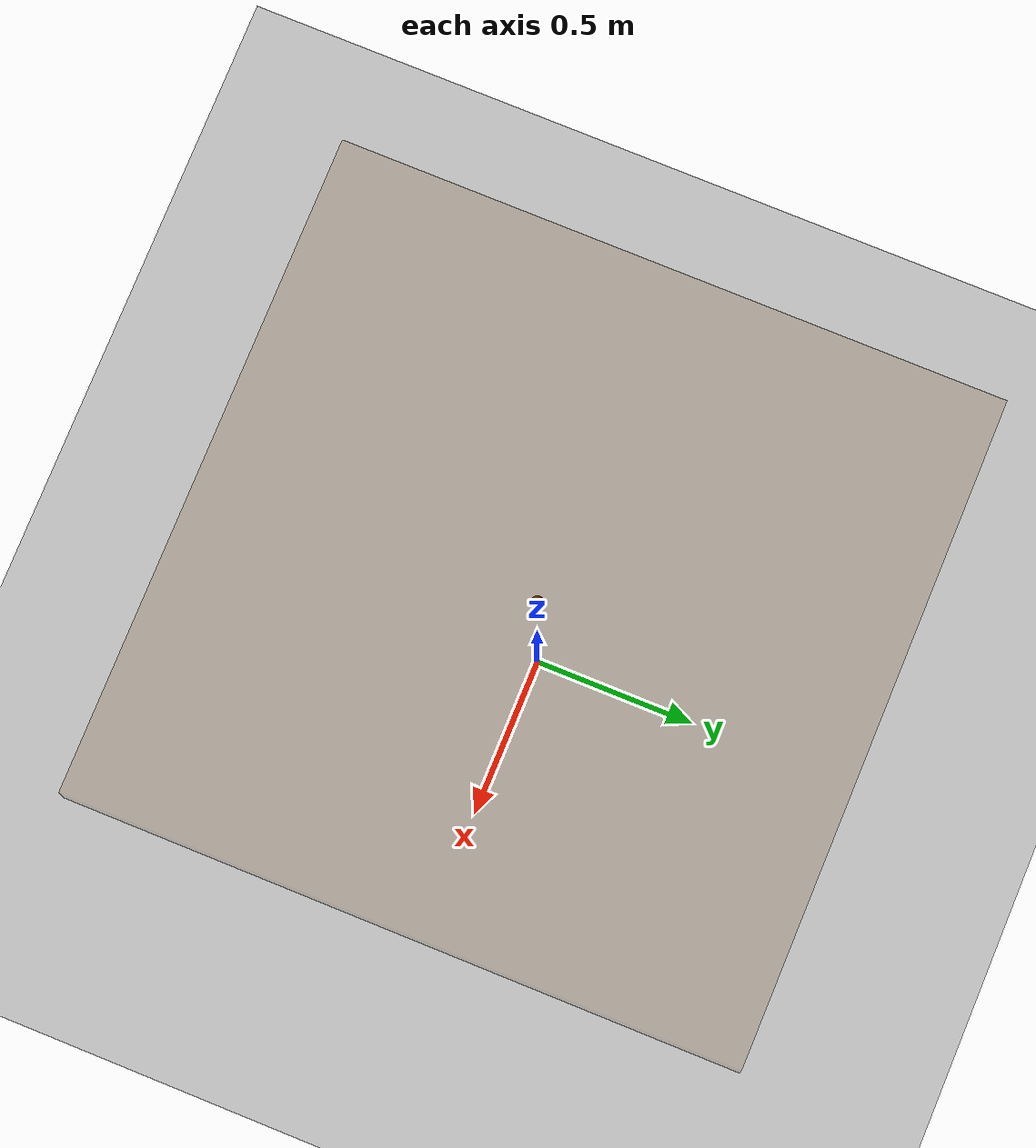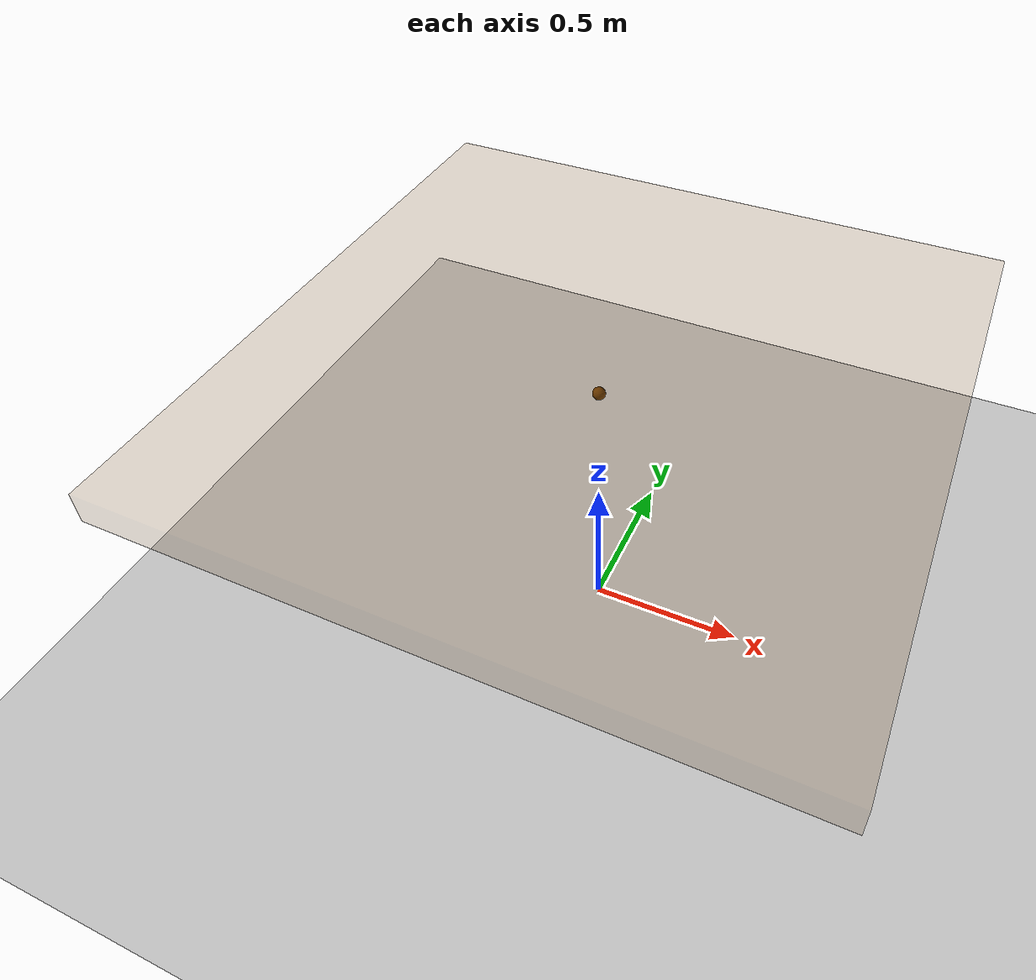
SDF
<?xml version="1.0"?>
<sdf version="1.4">
  <world name="default">
    <physics type="ode">
      <gravity>0.0 0.0 -9.8</gravity>
    </physics>

    <!-- Ground Plane -->
    <include>
      <uri>model://ground_plane</uri>
    </include>

    <include>
      <uri>model://sun</uri>
    </include>

    <model name="box">
      <pose>0 0 0 0 0 0</pose>
      <static>false</static>
      <enable_wind>true</enable_wind>
      <self_collide>true</self_collide>
      <link name="roof">
        <kinematic>true</kinematic>
        <pose>0 0 1 0 0 0</pose>
        <collision name="collision">
          <geometry>
            <box>
              <size>1 1 0.1</size>
            </box>
          </geometry>
         <surface>
            <friction>
              <ode>
               <mu>0.1</mu>
                <mu2>0</mu2>
              </ode>
            </friction>
          </surface>
       </collision>
        <visual name="visual">
          <transparency>0.9</transparency>
          <geometry>
            <box>
              <size>2 2 0.1</size>
            </box>
          </geometry>
          <material>
            <ambient>0.2 0.2 0.2 1.0</ambient>
            <diffuse>.421 0.225 0.0 1.0</diffuse>
          </material>
        </visual>
      </link>
      <link name="sphere_1">
        <pose>0 0 0.93 0 0 0</pose>
        <collision name="collision">
          <geometry>
            <sphere>
              <radius>0.02</radius>
            </sphere>
          </geometry>
        </collision>
        <visual name="visual">
          <geometry>
            <sphere>
              <radius>0.02</radius>
            </sphere>
          </geometry>
          <material>
            <ambient>1.0 0 0 1.0</ambient>
            <diffuse>.421 0.225 0.0 1.0</diffuse>
          </material>
        </visual>
      </link>
      <joint name="sphere_1_joint" type="ball">
        <parent>roof</parent>
        <child>sphere_1</child>
      </joint>
    </model>

    <wind>
      <linear_velocity>0.1 0 0</linear_velocity>
    </wind>

    <!-- Load the plugin for the wind -->
    <plugin name="model_push" filename="libmodel_push.so"/>
  </world>
</sdf>
